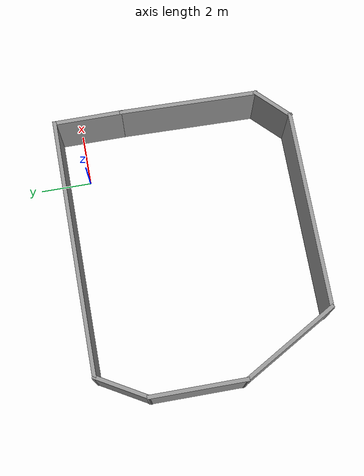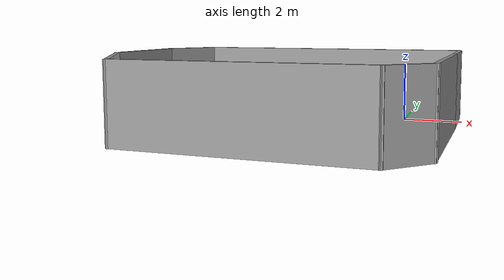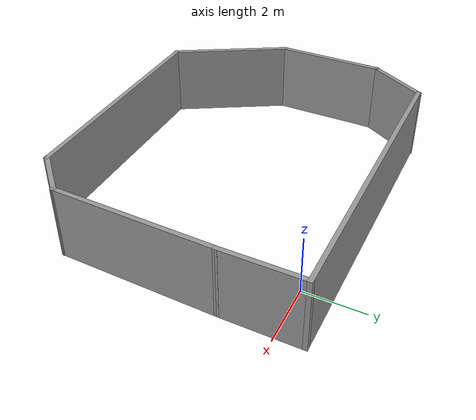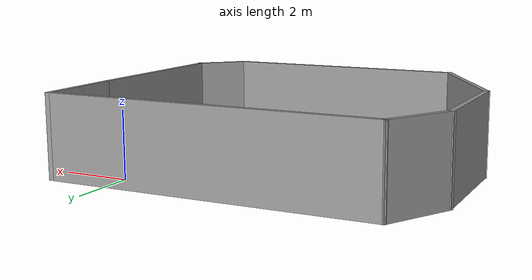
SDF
<?xml version='1.0'?>
<sdf version='1.7'>
  <model name='final_supermarket_wall'>
    <pose>-3.64856 -3.58994 0 0 -0 0</pose>
    <link name='Wall_46'>
      <collision name='Wall_46_Collision'>
        <geometry>
          <box>
            <size>2.75 0.15 2.5</size>
          </box>
        </geometry>
        <pose>0 0 1.25 0 -0 0</pose>
      </collision>
      <visual name='Wall_46_Visual'>
        <pose>0 0 1.25 0 -0 0</pose>
        <geometry>
          <box>
            <size>2.75 0.15 2.5</size>
          </box>
        </geometry>
        <material>
          <script>
            <uri>file://media/materials/scripts/gazebo.material</uri>
            <name>Gazebo/Grey</name>
          </script>
          <ambient>1 1 1 1</ambient>
        </material>
        <meta>
          <layer>0</layer>
        </meta>
      </visual>
      <pose>5.46289 3.18649 0 0 -0 1.5708</pose>
    </link>
    <link name='Wall_50'>
      <collision name='Wall_50_Collision'>
        <geometry>
          <box>
            <size>10 0.15 2.5</size>
          </box>
        </geometry>
        <pose>0 0 1.25 0 -0 0</pose>
      </collision>
      <visual name='Wall_50_Visual'>
        <pose>0 0 1.25 0 -0 0</pose>
        <geometry>
          <box>
            <size>10 0.15 2.5</size>
          </box>
        </geometry>
        <material>
          <script>
            <uri>file://media/materials/scripts/gazebo.material</uri>
            <name>Gazebo/Grey</name>
          </script>
          <ambient>1 1 1 1</ambient>
        </material>
        <meta>
          <layer>0</layer>
        </meta>
      </visual>
      <pose>0.537887 4.48649 0 0 -0 3.14159</pose>
    </link>
    <link name='Wall_51'>
      <collision name='Wall_51_Collision'>
        <geometry>
          <box>
            <size>2.25 0.15 2.5</size>
          </box>
        </geometry>
        <pose>0 0 1.25 0 -0 0</pose>
      </collision>
      <visual name='Wall_51_Visual'>
        <pose>0 0 1.25 0 -0 0</pose>
        <geometry>
          <box>
            <size>2.25 0.15 2.5</size>
          </box>
        </geometry>
        <material>
          <script>
            <uri>file://media/materials/scripts/gazebo.material</uri>
            <name>Gazebo/Grey</name>
          </script>
          <ambient>1 1 1 1</ambient>
        </material>
        <meta>
          <layer>0</layer>
        </meta>
      </visual>
      <pose>-4.91211 3.57716 0 0 -0 -2.0944</pose>
    </link>
    <link name='Wall_52'>
      <collision name='Wall_52_Collision'>
        <geometry>
          <box>
            <size>3.75 0.15 2.5</size>
          </box>
        </geometry>
        <pose>0 0 1.25 0 -0 0</pose>
      </collision>
      <visual name='Wall_52_Visual'>
        <pose>0 0 1.25 0 -0 0</pose>
        <geometry>
          <box>
            <size>3.75 0.15 2.5</size>
          </box>
        </geometry>
        <material>
          <script>
            <uri>file://media/materials/scripts/gazebo.material</uri>
            <name>Gazebo/Grey</name>
          </script>
          <ambient>1 1 1 1</ambient>
        </material>
        <meta>
          <layer>0</layer>
        </meta>
      </visual>
      <pose>-5.43711 0.867833 0 0 -0 -1.5708</pose>
    </link>
    <link name='Wall_53'>
      <collision name='Wall_53_Collision'>
        <geometry>
          <box>
            <size>4.25 0.15 2.5</size>
          </box>
        </geometry>
        <pose>0 0 1.25 0 -0 0</pose>
      </collision>
      <visual name='Wall_53_Visual'>
        <pose>0 0 1.25 0 -0 0</pose>
        <geometry>
          <box>
            <size>4.25 0.15 2.5</size>
          </box>
        </geometry>
        <material>
          <script>
            <uri>file://media/materials/scripts/gazebo.material</uri>
            <name>Gazebo/Grey</name>
          </script>
          <ambient>1 1 1 1</ambient>
        </material>
        <meta>
          <layer>0</layer>
        </meta>
      </visual>
      <pose>-4.41211 -2.70752 0 0 -0 -1.0472</pose>
    </link>
    <link name='Wall_54'>
      <collision name='Wall_54_Collision'>
        <geometry>
          <box>
            <size>7.75 0.15 2.5</size>
          </box>
        </geometry>
        <pose>0 0 1.25 0 -0 0</pose>
      </collision>
      <visual name='Wall_54_Visual'>
        <pose>0 0 1.25 0 -0 0</pose>
        <geometry>
          <box>
            <size>7.75 0.15 2.5</size>
          </box>
        </geometry>
        <material>
          <script>
            <uri>file://media/materials/scripts/gazebo.material</uri>
            <name>Gazebo/Grey</name>
          </script>
          <ambient>1 1 1 1</ambient>
        </material>
        <meta>
          <layer>0</layer>
        </meta>
      </visual>
      <pose>0.412887 -4.48287 0 0 -0 0</pose>
    </link>
    <link name='Wall_55'>
      <collision name='Wall_55_Collision'>
        <geometry>
          <box>
            <size>1.75 0.15 2.5</size>
          </box>
        </geometry>
        <pose>0 0 1.25 0 -0 0</pose>
      </collision>
      <visual name='Wall_55_Visual'>
        <pose>0 0 1.25 0 -0 0</pose>
        <geometry>
          <box>
            <size>1.75 0.15 2.5</size>
          </box>
        </geometry>
        <material>
          <script>
            <uri>file://media/materials/scripts/gazebo.material</uri>
            <name>Gazebo/Grey</name>
          </script>
          <ambient>1 1 1 1</ambient>
        </material>
        <meta>
          <layer>0</layer>
        </meta>
      </visual>
      <pose>4.77857 -3.91719 0 0 -0 0.785398</pose>
    </link>
    <link name='Wall_56'>
      <collision name='Wall_56_Collision'>
        <geometry>
          <box>
            <size>5.38933 0.15 2.5</size>
          </box>
        </geometry>
        <pose>0 0 1.25 0 -0 0</pose>
      </collision>
      <visual name='Wall_56_Visual'>
        <pose>0 0 1.25 0 -0 0</pose>
        <geometry>
          <box>
            <size>5.38933 0.15 2.5</size>
          </box>
        </geometry>
        <material>
          <script>
            <uri>file://media/materials/scripts/gazebo.material</uri>
            <name>Gazebo/Grey</name>
          </script>
          <ambient>1 1 1 1</ambient>
        </material>
        <meta>
          <layer>0</layer>
        </meta>
      </visual>
      <pose>5.40357 -0.732507 0 0 -0 1.54815</pose>
    </link>
    <static>1</static>
  </model>
</sdf>
